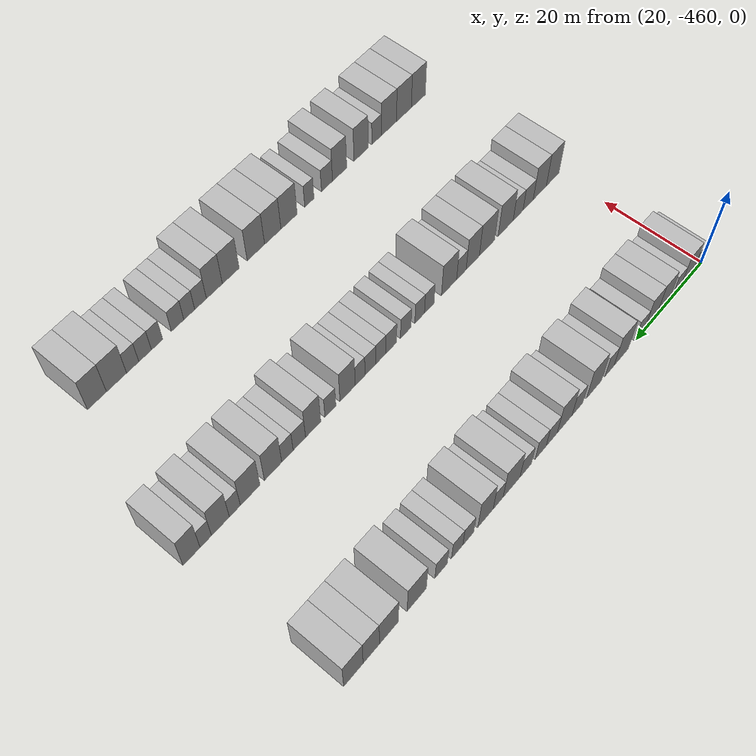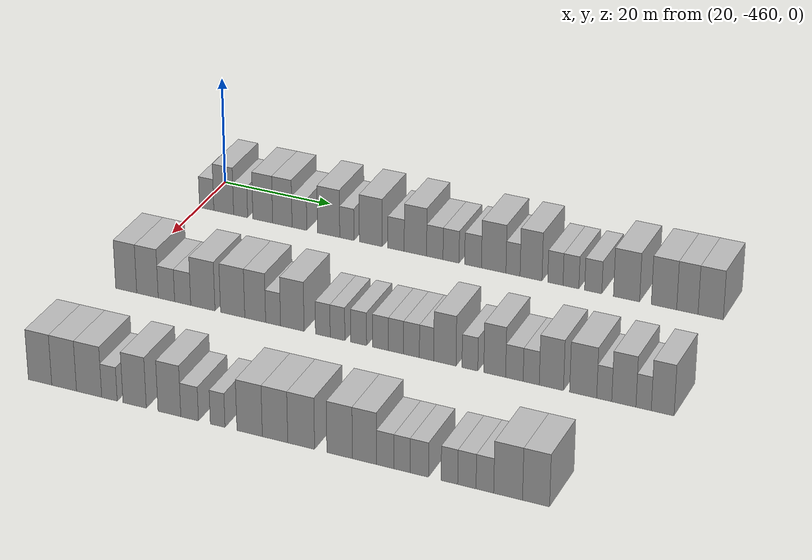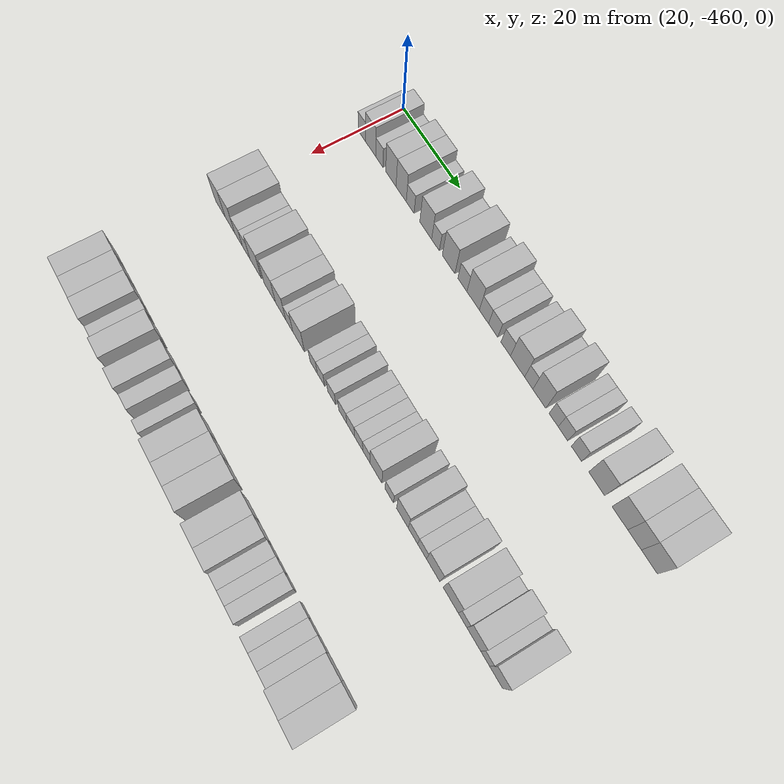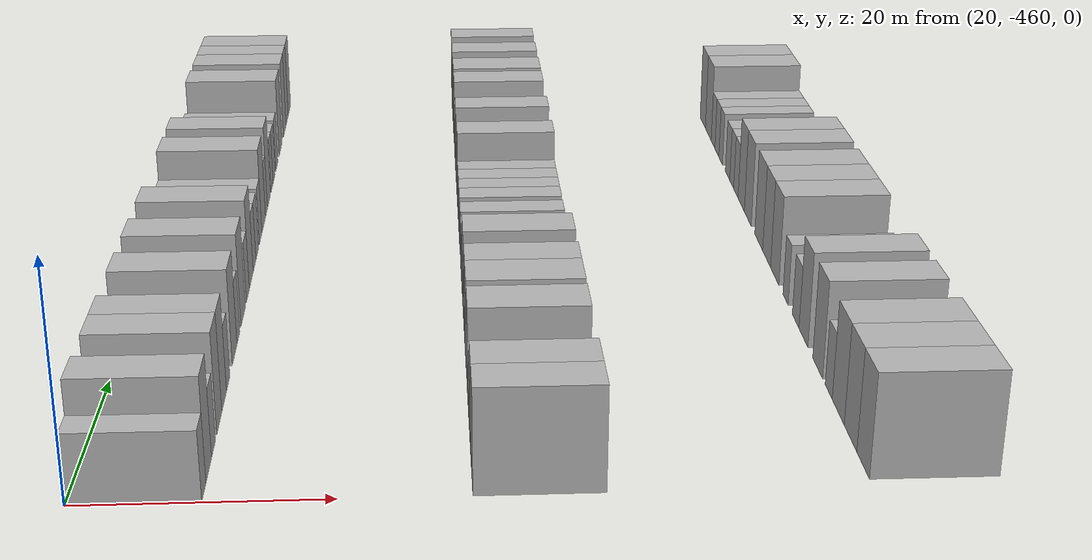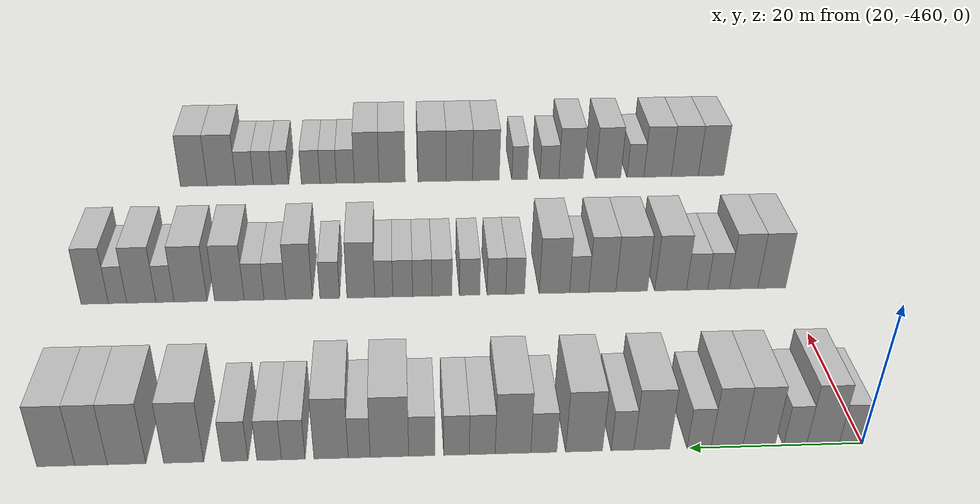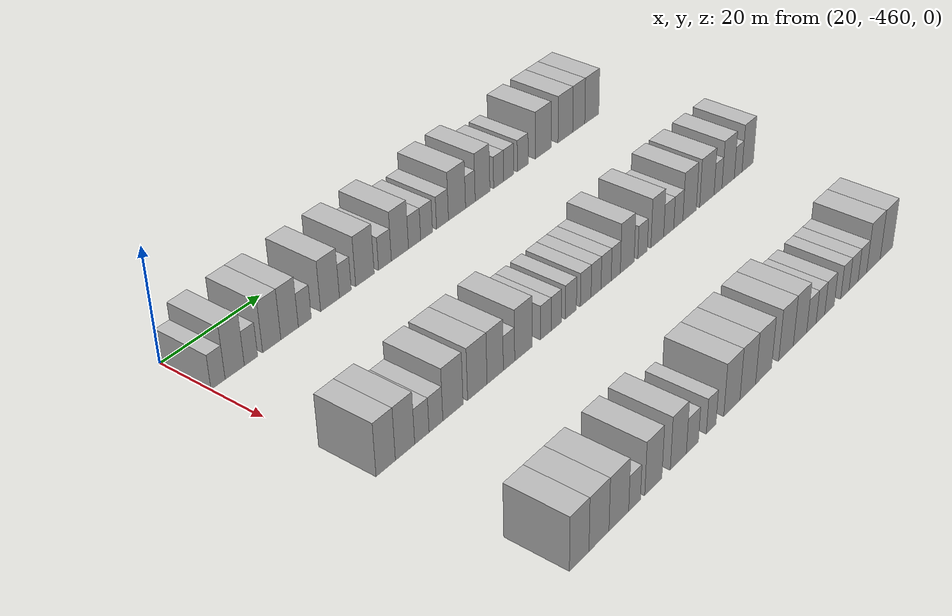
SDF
<sdf version="1.6">
 <world name="default">
  <model name="building_1">
   <static>1</static>
   <pose>25.0000 -458.6283 0 0.000000 0.000000 0.000000</pose>
   <link name="link">
    <pose>0 0 3.00 0 0 0</pose>
    <collision name="collision"><geometry><box><size>10.0000 2.7434 6.0000</size></box></geometry></collision>
    <visual name="visual">
     <cast_shadows>0</cast_shadows>
     <geometry><box><size>10.0000 2.7434 6.0000</size></box></geometry>
     <material>
      <script>
       <uri>model://HANNAS_wall/materials/scripts</uri>
       <uri>model://HANNAS_wall/materials/textures</uri>
       <name>vrc/HANNAS_wall</name>
      </script>
     </material>
    </visual>
   </link>
  </model>
  <model name="building_2">
   <static>1</static>
   <pose>25.0000 -455.3693 0 0.000000 0.000000 0.000000</pose>
   <link name="link">
    <pose>0 0 4.50 0 0 0</pose>
    <collision name="collision"><geometry><box><size>10.0000 3.7745 9.0000</size></box></geometry></collision>
    <visual name="visual">
     <cast_shadows>0</cast_shadows>
     <geometry><box><size>10.0000 3.7745 9.0000</size></box></geometry>
     <material>
      <script>
       <uri>model://HANNAS_wall/materials/scripts</uri>
       <uri>model://HANNAS_wall/materials/textures</uri>
       <name>vrc/HANNAS_wall</name>
      </script>
     </material>
    </visual>
   </link>
  </model>
  <model name="building_3">
   <static>1</static>
   <pose>25.0000 -452.1495 0 0.000000 0.000000 0.000000</pose>
   <link name="link">
    <pose>0 0 3.00 0 0 0</pose>
    <collision name="collision"><geometry><box><size>10.0000 2.6650 6.0000</size></box></geometry></collision>
    <visual name="visual">
     <cast_shadows>0</cast_shadows>
     <geometry><box><size>10.0000 2.6650 6.0000</size></box></geometry>
     <material>
      <script>
       <uri>model://HANNAS_wall/materials/scripts</uri>
       <uri>model://HANNAS_wall/materials/textures</uri>
       <name>vrc/HANNAS_wall</name>
      </script>
     </material>
    </visual>
   </link>
  </model>
  <model name="building_4">
   <static>1</static>
   <pose>25.0000 -447.9494 0 0.000000 0.000000 0.000000</pose>
   <link name="link">
    <pose>0 0 4.50 0 0 0</pose>
    <collision name="collision"><geometry><box><size>10.0000 3.7353 9.0000</size></box></geometry></collision>
    <visual name="visual">
     <cast_shadows>0</cast_shadows>
     <geometry><box><size>10.0000 3.7353 9.0000</size></box></geometry>
     <material>
      <script>
       <uri>model://HANNAS_wall/materials/scripts</uri>
       <uri>model://HANNAS_wall/materials/textures</uri>
       <name>vrc/HANNAS_wall</name>
      </script>
     </material>
    </visual>
   </link>
  </model>
  <model name="building_5">
   <static>1</static>
   <pose>25.0000 -444.2583 0 0.000000 0.000000 0.000000</pose>
   <link name="link">
    <pose>0 0 4.50 0 0 0</pose>
    <collision name="collision"><geometry><box><size>10.0000 3.6470 9.0000</size></box></geometry></collision>
    <visual name="visual">
     <cast_shadows>0</cast_shadows>
     <geometry><box><size>10.0000 3.6470 9.0000</size></box></geometry>
     <material>
      <script>
       <uri>model://HANNAS_wall/materials/scripts</uri>
       <uri>model://HANNAS_wall/materials/textures</uri>
       <name>vrc/HANNAS_wall</name>
      </script>
     </material>
    </visual>
   </link>
  </model>
  <model name="building_6">
   <static>1</static>
   <pose>25.0000 -441.0550 0 0.000000 0.000000 0.000000</pose>
   <link name="link">
    <pose>0 0 3.00 0 0 0</pose>
    <collision name="collision"><geometry><box><size>10.0000 2.7596 6.0000</size></box></geometry></collision>
    <visual name="visual">
     <cast_shadows>0</cast_shadows>
     <geometry><box><size>10.0000 2.7596 6.0000</size></box></geometry>
     <material>
      <script>
       <uri>model://HANNAS_wall/materials/scripts</uri>
       <uri>model://HANNAS_wall/materials/textures</uri>
       <name>vrc/HANNAS_wall</name>
      </script>
     </material>
    </visual>
   </link>
  </model>
  <model name="building_7">
   <static>1</static>
   <pose>25.0000 -435.6190 0 0.000000 0.000000 0.000000</pose>
   <link name="link">
    <pose>0 0 4.50 0 0 0</pose>
    <collision name="collision"><geometry><box><size>10.0000 4.1124 9.0000</size></box></geometry></collision>
    <visual name="visual">
     <cast_shadows>0</cast_shadows>
     <geometry><box><size>10.0000 4.1124 9.0000</size></box></geometry>
     <material>
      <script>
       <uri>model://HANNAS_wall/materials/scripts</uri>
       <uri>model://HANNAS_wall/materials/textures</uri>
       <name>vrc/HANNAS_wall</name>
      </script>
     </material>
    </visual>
   </link>
  </model>
  <model name="building_8">
   <static>1</static>
   <pose>25.0000 -432.2539 0 0.000000 0.000000 0.000000</pose>
   <link name="link">
    <pose>0 0 3.00 0 0 0</pose>
    <collision name="collision"><geometry><box><size>10.0000 2.6179 6.0000</size></box></geometry></collision>
    <visual name="visual">
     <cast_shadows>0</cast_shadows>
     <geometry><box><size>10.0000 2.6179 6.0000</size></box></geometry>
     <material>
      <script>
       <uri>model://HANNAS_wall/materials/scripts</uri>
       <uri>model://HANNAS_wall/materials/textures</uri>
       <name>vrc/HANNAS_wall</name>
      </script>
     </material>
    </visual>
   </link>
  </model>
  <model name="building_9">
   <static>1</static>
   <pose>25.0000 -427.8353 0 0.000000 0.000000 0.000000</pose>
   <link name="link">
    <pose>0 0 4.50 0 0 0</pose>
    <collision name="collision"><geometry><box><size>10.0000 4.2192 9.0000</size></box></geometry></collision>
    <visual name="visual">
     <cast_shadows>0</cast_shadows>
     <geometry><box><size>10.0000 4.2192 9.0000</size></box></geometry>
     <material>
      <script>
       <uri>model://HANNAS_wall/materials/scripts</uri>
       <uri>model://HANNAS_wall/materials/textures</uri>
       <name>vrc/HANNAS_wall</name>
      </script>
     </material>
    </visual>
   </link>
  </model>
  <model name="building_10">
   <static>1</static>
   <pose>25.0000 -423.2299 0 0.000000 0.000000 0.000000</pose>
   <link name="link">
    <pose>0 0 3.00 0 0 0</pose>
    <collision name="collision"><geometry><box><size>10.0000 2.9917 6.0000</size></box></geometry></collision>
    <visual name="visual">
     <cast_shadows>0</cast_shadows>
     <geometry><box><size>10.0000 2.9917 6.0000</size></box></geometry>
     <material>
      <script>
       <uri>model://HANNAS_wall/materials/scripts</uri>
       <uri>model://HANNAS_wall/materials/textures</uri>
       <name>vrc/HANNAS_wall</name>
      </script>
     </material>
    </visual>
   </link>
  </model>
  <model name="building_11">
   <static>1</static>
   <pose>25.0000 -419.7063 0 0.000000 0.000000 0.000000</pose>
   <link name="link">
    <pose>0 0 4.50 0 0 0</pose>
    <collision name="collision"><geometry><box><size>10.0000 4.0556 9.0000</size></box></geometry></collision>
    <visual name="visual">
     <cast_shadows>0</cast_shadows>
     <geometry><box><size>10.0000 4.0556 9.0000</size></box></geometry>
     <material>
      <script>
       <uri>model://HANNAS_wall/materials/scripts</uri>
       <uri>model://HANNAS_wall/materials/textures</uri>
       <name>vrc/HANNAS_wall</name>
      </script>
     </material>
    </visual>
   </link>
  </model>
  <model name="building_12">
   <static>1</static>
   <pose>25.0000 -416.2022 0 0.000000 0.000000 0.000000</pose>
   <link name="link">
    <pose>0 0 3.00 0 0 0</pose>
    <collision name="collision"><geometry><box><size>10.0000 2.9526 6.0000</size></box></geometry></collision>
    <visual name="visual">
     <cast_shadows>0</cast_shadows>
     <geometry><box><size>10.0000 2.9526 6.0000</size></box></geometry>
     <material>
      <script>
       <uri>model://HANNAS_wall/materials/scripts</uri>
       <uri>model://HANNAS_wall/materials/textures</uri>
       <name>vrc/HANNAS_wall</name>
      </script>
     </material>
    </visual>
   </link>
  </model>
  <model name="building_13">
   <static>1</static>
   <pose>25.0000 -413.2810 0 0.000000 0.000000 0.000000</pose>
   <link name="link">
    <pose>0 0 3.00 0 0 0</pose>
    <collision name="collision"><geometry><box><size>10.0000 2.8898 6.0000</size></box></geometry></collision>
    <visual name="visual">
     <cast_shadows>0</cast_shadows>
     <geometry><box><size>10.0000 2.8898 6.0000</size></box></geometry>
     <material>
      <script>
       <uri>model://HANNAS_wall/materials/scripts</uri>
       <uri>model://HANNAS_wall/materials/textures</uri>
       <name>vrc/HANNAS_wall</name>
      </script>
     </material>
    </visual>
   </link>
  </model>
  <model name="building_14">
   <static>1</static>
   <pose>25.0000 -409.3440 0 0.000000 0.000000 0.000000</pose>
   <link name="link">
    <pose>0 0 3.00 0 0 0</pose>
    <collision name="collision"><geometry><box><size>10.0000 2.9842 6.0000</size></box></geometry></collision>
    <visual name="visual">
     <cast_shadows>0</cast_shadows>
     <geometry><box><size>10.0000 2.9842 6.0000</size></box></geometry>
     <material>
      <script>
       <uri>model://HANNAS_wall/materials/scripts</uri>
       <uri>model://HANNAS_wall/materials/textures</uri>
       <name>vrc/HANNAS_wall</name>
      </script>
     </material>
    </visual>
   </link>
  </model>
  <model name="building_15">
   <static>1</static>
   <pose>25.0000 -405.6760 0 0.000000 0.000000 0.000000</pose>
   <link name="link">
    <pose>0 0 4.50 0 0 0</pose>
    <collision name="collision"><geometry><box><size>10.0000 4.3517 9.0000</size></box></geometry></collision>
    <visual name="visual">
     <cast_shadows>0</cast_shadows>
     <geometry><box><size>10.0000 4.3517 9.0000</size></box></geometry>
     <material>
      <script>
       <uri>model://HANNAS_wall/materials/scripts</uri>
       <uri>model://HANNAS_wall/materials/textures</uri>
       <name>vrc/HANNAS_wall</name>
      </script>
     </material>
    </visual>
   </link>
  </model>
  <model name="building_16">
   <static>1</static>
   <pose>25.0000 -402.2556 0 0.000000 0.000000 0.000000</pose>
   <link name="link">
    <pose>0 0 3.00 0 0 0</pose>
    <collision name="collision"><geometry><box><size>10.0000 2.4892 6.0000</size></box></geometry></collision>
    <visual name="visual">
     <cast_shadows>0</cast_shadows>
     <geometry><box><size>10.0000 2.4892 6.0000</size></box></geometry>
     <material>
      <script>
       <uri>model://HANNAS_wall/materials/scripts</uri>
       <uri>model://HANNAS_wall/materials/textures</uri>
       <name>vrc/HANNAS_wall</name>
      </script>
     </material>
    </visual>
   </link>
  </model>
  <model name="building_17">
   <static>1</static>
   <pose>25.0000 -399.0806 0 0.000000 0.000000 0.000000</pose>
   <link name="link">
    <pose>0 0 4.50 0 0 0</pose>
    <collision name="collision"><geometry><box><size>10.0000 3.8608 9.0000</size></box></geometry></collision>
    <visual name="visual">
     <cast_shadows>0</cast_shadows>
     <geometry><box><size>10.0000 3.8608 9.0000</size></box></geometry>
     <material>
      <script>
       <uri>model://HANNAS_wall/materials/scripts</uri>
       <uri>model://HANNAS_wall/materials/textures</uri>
       <name>vrc/HANNAS_wall</name>
      </script>
     </material>
    </visual>
   </link>
  </model>
  <model name="building_18">
   <static>1</static>
   <pose>25.0000 -394.8161 0 0.000000 0.000000 0.000000</pose>
   <link name="link">
    <pose>0 0 3.00 0 0 0</pose>
    <collision name="collision"><geometry><box><size>10.0000 2.6683 6.0000</size></box></geometry></collision>
    <visual name="visual">
     <cast_shadows>0</cast_shadows>
     <geometry><box><size>10.0000 2.6683 6.0000</size></box></geometry>
     <material>
      <script>
       <uri>model://HANNAS_wall/materials/scripts</uri>
       <uri>model://HANNAS_wall/materials/textures</uri>
       <name>vrc/HANNAS_wall</name>
      </script>
     </material>
    </visual>
   </link>
  </model>
  <model name="building_19">
   <static>1</static>
   <pose>25.0000 -392.1013 0 0.000000 0.000000 0.000000</pose>
   <link name="link">
    <pose>0 0 3.00 0 0 0</pose>
    <collision name="collision"><geometry><box><size>10.0000 2.7613 6.0000</size></box></geometry></collision>
    <visual name="visual">
     <cast_shadows>0</cast_shadows>
     <geometry><box><size>10.0000 2.7613 6.0000</size></box></geometry>
     <material>
      <script>
       <uri>model://HANNAS_wall/materials/scripts</uri>
       <uri>model://HANNAS_wall/materials/textures</uri>
       <name>vrc/HANNAS_wall</name>
      </script>
     </material>
    </visual>
   </link>
  </model>
  <model name="building_20">
   <static>1</static>
   <pose>25.0000 -388.2352 0 0.000000 0.000000 0.000000</pose>
   <link name="link">
    <pose>0 0 3.00 0 0 0</pose>
    <collision name="collision"><geometry><box><size>10.0000 2.9707 6.0000</size></box></geometry></collision>
    <visual name="visual">
     <cast_shadows>0</cast_shadows>
     <geometry><box><size>10.0000 2.9707 6.0000</size></box></geometry>
     <material>
      <script>
       <uri>model://HANNAS_wall/materials/scripts</uri>
       <uri>model://HANNAS_wall/materials/textures</uri>
       <name>vrc/HANNAS_wall</name>
      </script>
     </material>
    </visual>
   </link>
  </model>
  <model name="building_21">
   <static>1</static>
   <pose>25.0000 -382.5106 0 0.000000 0.000000 0.000000</pose>
   <link name="link">
    <pose>0 0 4.50 0 0 0</pose>
    <collision name="collision"><geometry><box><size>10.0000 4.4785 9.0000</size></box></geometry></collision>
    <visual name="visual">
     <cast_shadows>0</cast_shadows>
     <geometry><box><size>10.0000 4.4785 9.0000</size></box></geometry>
     <material>
      <script>
       <uri>model://HANNAS_wall/materials/scripts</uri>
       <uri>model://HANNAS_wall/materials/textures</uri>
       <name>vrc/HANNAS_wall</name>
      </script>
     </material>
    </visual>
   </link>
  </model>
  <model name="building_22">
   <static>1</static>
   <pose>25.0000 -376.1218 0 0.000000 0.000000 0.000000</pose>
   <link name="link">
    <pose>0 0 4.50 0 0 0</pose>
    <collision name="collision"><geometry><box><size>10.0000 4.2990 9.0000</size></box></geometry></collision>
    <visual name="visual">
     <cast_shadows>0</cast_shadows>
     <geometry><box><size>10.0000 4.2990 9.0000</size></box></geometry>
     <material>
      <script>
       <uri>model://HANNAS_wall/materials/scripts</uri>
       <uri>model://HANNAS_wall/materials/textures</uri>
       <name>vrc/HANNAS_wall</name>
      </script>
     </material>
    </visual>
   </link>
  </model>
  <model name="building_23">
   <static>1</static>
   <pose>25.0000 -372.1706 0 0.000000 0.000000 0.000000</pose>
   <link name="link">
    <pose>0 0 4.50 0 0 0</pose>
    <collision name="collision"><geometry><box><size>10.0000 3.6033 9.0000</size></box></geometry></collision>
    <visual name="visual">
     <cast_shadows>0</cast_shadows>
     <geometry><box><size>10.0000 3.6033 9.0000</size></box></geometry>
     <material>
      <script>
       <uri>model://HANNAS_wall/materials/scripts</uri>
       <uri>model://HANNAS_wall/materials/textures</uri>
       <name>vrc/HANNAS_wall</name>
      </script>
     </material>
    </visual>
   </link>
  </model>
  <model name="building_24">
   <static>1</static>
   <pose>25.0000 -368.2538 0 0.000000 0.000000 0.000000</pose>
   <link name="link">
    <pose>0 0 4.50 0 0 0</pose>
    <collision name="collision"><geometry><box><size>10.0000 4.2304 9.0000</size></box></geometry></collision>
    <visual name="visual">
     <cast_shadows>0</cast_shadows>
     <geometry><box><size>10.0000 4.2304 9.0000</size></box></geometry>
     <material>
      <script>
       <uri>model://HANNAS_wall/materials/scripts</uri>
       <uri>model://HANNAS_wall/materials/textures</uri>
       <name>vrc/HANNAS_wall</name>
      </script>
     </material>
    </visual>
   </link>
  </model>
  <model name="building_224">
   <static>1</static>
   <pose>55.0000 -458.0700 0 0.000000 0.000000 0.000000</pose>
   <link name="link">
    <pose>0 0 4.50 0 0 0</pose>
    <collision name="collision"><geometry><box><size>10.0000 3.8600 9.0000</size></box></geometry></collision>
    <visual name="visual">
     <cast_shadows>0</cast_shadows>
     <geometry><box><size>10.0000 3.8600 9.0000</size></box></geometry>
     <material>
      <script>
       <uri>model://HANNAS_wall/materials/scripts</uri>
       <uri>model://HANNAS_wall/materials/textures</uri>
       <name>vrc/HANNAS_wall</name>
      </script>
     </material>
    </visual>
   </link>
  </model>
  <model name="building_225">
   <static>1</static>
   <pose>55.0000 -454.1727 0 0.000000 0.000000 0.000000</pose>
   <link name="link">
    <pose>0 0 4.50 0 0 0</pose>
    <collision name="collision"><geometry><box><size>10.0000 3.9346 9.0000</size></box></geometry></collision>
    <visual name="visual">
     <cast_shadows>0</cast_shadows>
     <geometry><box><size>10.0000 3.9346 9.0000</size></box></geometry>
     <material>
      <script>
       <uri>model://HANNAS_wall/materials/scripts</uri>
       <uri>model://HANNAS_wall/materials/textures</uri>
       <name>vrc/HANNAS_wall</name>
      </script>
     </material>
    </visual>
   </link>
  </model>
  <model name="building_226">
   <static>1</static>
   <pose>55.0000 -450.7074 0 0.000000 0.000000 0.000000</pose>
   <link name="link">
    <pose>0 0 3.00 0 0 0</pose>
    <collision name="collision"><geometry><box><size>10.0000 2.9962 6.0000</size></box></geometry></collision>
    <visual name="visual">
     <cast_shadows>0</cast_shadows>
     <geometry><box><size>10.0000 2.9962 6.0000</size></box></geometry>
     <material>
      <script>
       <uri>model://HANNAS_wall/materials/scripts</uri>
       <uri>model://HANNAS_wall/materials/textures</uri>
       <name>vrc/HANNAS_wall</name>
      </script>
     </material>
    </visual>
   </link>
  </model>
  <model name="building_227">
   <static>1</static>
   <pose>55.0000 -447.7494 0 0.000000 0.000000 0.000000</pose>
   <link name="link">
    <pose>0 0 3.00 0 0 0</pose>
    <collision name="collision"><geometry><box><size>10.0000 2.9198 6.0000</size></box></geometry></collision>
    <visual name="visual">
     <cast_shadows>0</cast_shadows>
     <geometry><box><size>10.0000 2.9198 6.0000</size></box></geometry>
     <material>
      <script>
       <uri>model://HANNAS_wall/materials/scripts</uri>
       <uri>model://HANNAS_wall/materials/textures</uri>
       <name>vrc/HANNAS_wall</name>
      </script>
     </material>
    </visual>
   </link>
  </model>
  <model name="building_228">
   <static>1</static>
   <pose>55.0000 -444.1027 0 0.000000 0.000000 0.000000</pose>
   <link name="link">
    <pose>0 0 4.50 0 0 0</pose>
    <collision name="collision"><geometry><box><size>10.0000 4.3736 9.0000</size></box></geometry></collision>
    <visual name="visual">
     <cast_shadows>0</cast_shadows>
     <geometry><box><size>10.0000 4.3736 9.0000</size></box></geometry>
     <material>
      <script>
       <uri>model://HANNAS_wall/materials/scripts</uri>
       <uri>model://HANNAS_wall/materials/textures</uri>
       <name>vrc/HANNAS_wall</name>
      </script>
     </material>
    </visual>
   </link>
  </model>
  <model name="building_229">
   <static>1</static>
   <pose>55.0000 -438.7463 0 0.000000 0.000000 0.000000</pose>
   <link name="link">
    <pose>0 0 4.50 0 0 0</pose>
    <collision name="collision"><geometry><box><size>10.0000 4.3390 9.0000</size></box></geometry></collision>
    <visual name="visual">
     <cast_shadows>0</cast_shadows>
     <geometry><box><size>10.0000 4.3390 9.0000</size></box></geometry>
     <material>
      <script>
       <uri>model://HANNAS_wall/materials/scripts</uri>
       <uri>model://HANNAS_wall/materials/textures</uri>
       <name>vrc/HANNAS_wall</name>
      </script>
     </material>
    </visual>
   </link>
  </model>
  <model name="building_230">
   <static>1</static>
   <pose>55.0000 -434.7219 0 0.000000 0.000000 0.000000</pose>
   <link name="link">
    <pose>0 0 4.50 0 0 0</pose>
    <collision name="collision"><geometry><box><size>10.0000 3.7099 9.0000</size></box></geometry></collision>
    <visual name="visual">
     <cast_shadows>0</cast_shadows>
     <geometry><box><size>10.0000 3.7099 9.0000</size></box></geometry>
     <material>
      <script>
       <uri>model://HANNAS_wall/materials/scripts</uri>
       <uri>model://HANNAS_wall/materials/textures</uri>
       <name>vrc/HANNAS_wall</name>
      </script>
     </material>
    </visual>
   </link>
  </model>
  <model name="building_231">
   <static>1</static>
   <pose>55.0000 -431.5479 0 0.000000 0.000000 0.000000</pose>
   <link name="link">
    <pose>0 0 3.00 0 0 0</pose>
    <collision name="collision"><geometry><box><size>10.0000 2.6380 6.0000</size></box></geometry></collision>
    <visual name="visual">
     <cast_shadows>0</cast_shadows>
     <geometry><box><size>10.0000 2.6380 6.0000</size></box></geometry>
     <material>
      <script>
       <uri>model://HANNAS_wall/materials/scripts</uri>
       <uri>model://HANNAS_wall/materials/textures</uri>
       <name>vrc/HANNAS_wall</name>
      </script>
     </material>
    </visual>
   </link>
  </model>
  <model name="building_232">
   <static>1</static>
   <pose>55.0000 -428.1583 0 0.000000 0.000000 0.000000</pose>
   <link name="link">
    <pose>0 0 4.50 0 0 0</pose>
    <collision name="collision"><geometry><box><size>10.0000 4.1413 9.0000</size></box></geometry></collision>
    <visual name="visual">
     <cast_shadows>0</cast_shadows>
     <geometry><box><size>10.0000 4.1413 9.0000</size></box></geometry>
     <material>
      <script>
       <uri>model://HANNAS_wall/materials/scripts</uri>
       <uri>model://HANNAS_wall/materials/textures</uri>
       <name>vrc/HANNAS_wall</name>
      </script>
     </material>
    </visual>
   </link>
  </model>
  <model name="building_233">
   <static>1</static>
   <pose>55.0000 -422.8069 0 0.000000 0.000000 0.000000</pose>
   <link name="link">
    <pose>0 0 3.00 0 0 0</pose>
    <collision name="collision"><geometry><box><size>10.0000 2.5613 6.0000</size></box></geometry></collision>
    <visual name="visual">
     <cast_shadows>0</cast_shadows>
     <geometry><box><size>10.0000 2.5613 6.0000</size></box></geometry>
     <material>
      <script>
       <uri>model://HANNAS_wall/materials/scripts</uri>
       <uri>model://HANNAS_wall/materials/textures</uri>
       <name>vrc/HANNAS_wall</name>
      </script>
     </material>
    </visual>
   </link>
  </model>
  <model name="building_234">
   <static>1</static>
   <pose>55.0000 -420.2516 0 0.000000 0.000000 0.000000</pose>
   <link name="link">
    <pose>0 0 3.00 0 0 0</pose>
    <collision name="collision"><geometry><box><size>10.0000 2.5493 6.0000</size></box></geometry></collision>
    <visual name="visual">
     <cast_shadows>0</cast_shadows>
     <geometry><box><size>10.0000 2.5493 6.0000</size></box></geometry>
     <material>
      <script>
       <uri>model://HANNAS_wall/materials/scripts</uri>
       <uri>model://HANNAS_wall/materials/textures</uri>
       <name>vrc/HANNAS_wall</name>
      </script>
     </material>
    </visual>
   </link>
  </model>
  <model name="building_235">
   <static>1</static>
   <pose>55.0000 -416.5926 0 0.000000 0.000000 0.000000</pose>
   <link name="link">
    <pose>0 0 3.00 0 0 0</pose>
    <collision name="collision"><geometry><box><size>10.0000 2.7689 6.0000</size></box></geometry></collision>
    <visual name="visual">
     <cast_shadows>0</cast_shadows>
     <geometry><box><size>10.0000 2.7689 6.0000</size></box></geometry>
     <material>
      <script>
       <uri>model://HANNAS_wall/materials/scripts</uri>
       <uri>model://HANNAS_wall/materials/textures</uri>
       <name>vrc/HANNAS_wall</name>
      </script>
     </material>
    </visual>
   </link>
  </model>
  <model name="building_236">
   <static>1</static>
   <pose>55.0000 -412.8328 0 0.000000 0.000000 0.000000</pose>
   <link name="link">
    <pose>0 0 3.00 0 0 0</pose>
    <collision name="collision"><geometry><box><size>10.0000 2.7507 6.0000</size></box></geometry></collision>
    <visual name="visual">
     <cast_shadows>0</cast_shadows>
     <geometry><box><size>10.0000 2.7507 6.0000</size></box></geometry>
     <material>
      <script>
       <uri>model://HANNAS_wall/materials/scripts</uri>
       <uri>model://HANNAS_wall/materials/textures</uri>
       <name>vrc/HANNAS_wall</name>
      </script>
     </material>
    </visual>
   </link>
  </model>
  <model name="building_237">
   <static>1</static>
   <pose>55.0000 -410.1594 0 0.000000 0.000000 0.000000</pose>
   <link name="link">
    <pose>0 0 3.00 0 0 0</pose>
    <collision name="collision"><geometry><box><size>10.0000 2.5962 6.0000</size></box></geometry></collision>
    <visual name="visual">
     <cast_shadows>0</cast_shadows>
     <geometry><box><size>10.0000 2.5962 6.0000</size></box></geometry>
     <material>
      <script>
       <uri>model://HANNAS_wall/materials/scripts</uri>
       <uri>model://HANNAS_wall/materials/textures</uri>
       <name>vrc/HANNAS_wall</name>
      </script>
     </material>
    </visual>
   </link>
  </model>
  <model name="building_238">
   <static>1</static>
   <pose>55.0000 -407.5185 0 0.000000 0.000000 0.000000</pose>
   <link name="link">
    <pose>0 0 3.00 0 0 0</pose>
    <collision name="collision"><geometry><box><size>10.0000 2.6857 6.0000</size></box></geometry></collision>
    <visual name="visual">
     <cast_shadows>0</cast_shadows>
     <geometry><box><size>10.0000 2.6857 6.0000</size></box></geometry>
     <material>
      <script>
       <uri>model://HANNAS_wall/materials/scripts</uri>
       <uri>model://HANNAS_wall/materials/textures</uri>
       <name>vrc/HANNAS_wall</name>
      </script>
     </material>
    </visual>
   </link>
  </model>
  <model name="building_239">
   <static>1</static>
   <pose>55.0000 -404.9559 0 0.000000 0.000000 0.000000</pose>
   <link name="link">
    <pose>0 0 3.00 0 0 0</pose>
    <collision name="collision"><geometry><box><size>10.0000 2.4395 6.0000</size></box></geometry></collision>
    <visual name="visual">
     <cast_shadows>0</cast_shadows>
     <geometry><box><size>10.0000 2.4395 6.0000</size></box></geometry>
     <material>
      <script>
       <uri>model://HANNAS_wall/materials/scripts</uri>
       <uri>model://HANNAS_wall/materials/textures</uri>
       <name>vrc/HANNAS_wall</name>
      </script>
     </material>
    </visual>
   </link>
  </model>
  <model name="building_240">
   <static>1</static>
   <pose>55.0000 -401.8536 0 0.000000 0.000000 0.000000</pose>
   <link name="link">
    <pose>0 0 4.50 0 0 0</pose>
    <collision name="collision"><geometry><box><size>10.0000 3.7651 9.0000</size></box></geometry></collision>
    <visual name="visual">
     <cast_shadows>0</cast_shadows>
     <geometry><box><size>10.0000 3.7651 9.0000</size></box></geometry>
     <material>
      <script>
       <uri>model://HANNAS_wall/materials/scripts</uri>
       <uri>model://HANNAS_wall/materials/textures</uri>
       <name>vrc/HANNAS_wall</name>
      </script>
     </material>
    </visual>
   </link>
  </model>
  <model name="building_241">
   <static>1</static>
   <pose>55.0000 -397.6453 0 0.000000 0.000000 0.000000</pose>
   <link name="link">
    <pose>0 0 3.00 0 0 0</pose>
    <collision name="collision"><geometry><box><size>10.0000 2.6514 6.0000</size></box></geometry></collision>
    <visual name="visual">
     <cast_shadows>0</cast_shadows>
     <geometry><box><size>10.0000 2.6514 6.0000</size></box></geometry>
     <material>
      <script>
       <uri>model://HANNAS_wall/materials/scripts</uri>
       <uri>model://HANNAS_wall/materials/textures</uri>
       <name>vrc/HANNAS_wall</name>
      </script>
     </material>
    </visual>
   </link>
  </model>
  <model name="building_242">
   <static>1</static>
   <pose>55.0000 -393.5048 0 0.000000 0.000000 0.000000</pose>
   <link name="link">
    <pose>0 0 4.50 0 0 0</pose>
    <collision name="collision"><geometry><box><size>10.0000 3.6295 9.0000</size></box></geometry></collision>
    <visual name="visual">
     <cast_shadows>0</cast_shadows>
     <geometry><box><size>10.0000 3.6295 9.0000</size></box></geometry>
     <material>
      <script>
       <uri>model://HANNAS_wall/materials/scripts</uri>
       <uri>model://HANNAS_wall/materials/textures</uri>
       <name>vrc/HANNAS_wall</name>
      </script>
     </material>
    </visual>
   </link>
  </model>
  <model name="building_243">
   <static>1</static>
   <pose>55.0000 -390.2352 0 0.000000 0.000000 0.000000</pose>
   <link name="link">
    <pose>0 0 3.00 0 0 0</pose>
    <collision name="collision"><geometry><box><size>10.0000 2.9099 6.0000</size></box></geometry></collision>
    <visual name="visual">
     <cast_shadows>0</cast_shadows>
     <geometry><box><size>10.0000 2.9099 6.0000</size></box></geometry>
     <material>
      <script>
       <uri>model://HANNAS_wall/materials/scripts</uri>
       <uri>model://HANNAS_wall/materials/textures</uri>
       <name>vrc/HANNAS_wall</name>
      </script>
     </material>
    </visual>
   </link>
  </model>
  <model name="building_244">
   <static>1</static>
   <pose>55.0000 -387.4516 0 0.000000 0.000000 0.000000</pose>
   <link name="link">
    <pose>0 0 3.00 0 0 0</pose>
    <collision name="collision"><geometry><box><size>10.0000 2.6573 6.0000</size></box></geometry></collision>
    <visual name="visual">
     <cast_shadows>0</cast_shadows>
     <geometry><box><size>10.0000 2.6573 6.0000</size></box></geometry>
     <material>
      <script>
       <uri>model://HANNAS_wall/materials/scripts</uri>
       <uri>model://HANNAS_wall/materials/textures</uri>
       <name>vrc/HANNAS_wall</name>
      </script>
     </material>
    </visual>
   </link>
  </model>
  <model name="building_245">
   <static>1</static>
   <pose>55.0000 -384.1329 0 0.000000 0.000000 0.000000</pose>
   <link name="link">
    <pose>0 0 4.50 0 0 0</pose>
    <collision name="collision"><geometry><box><size>10.0000 3.9801 9.0000</size></box></geometry></collision>
    <visual name="visual">
     <cast_shadows>0</cast_shadows>
     <geometry><box><size>10.0000 3.9801 9.0000</size></box></geometry>
     <material>
      <script>
       <uri>model://HANNAS_wall/materials/scripts</uri>
       <uri>model://HANNAS_wall/materials/textures</uri>
       <name>vrc/HANNAS_wall</name>
      </script>
     </material>
    </visual>
   </link>
  </model>
  <model name="building_246">
   <static>1</static>
   <pose>55.0000 -378.9392 0 0.000000 0.000000 0.000000</pose>
   <link name="link">
    <pose>0 0 4.50 0 0 0</pose>
    <collision name="collision"><geometry><box><size>10.0000 4.4073 9.0000</size></box></geometry></collision>
    <visual name="visual">
     <cast_shadows>0</cast_shadows>
     <geometry><box><size>10.0000 4.4073 9.0000</size></box></geometry>
     <material>
      <script>
       <uri>model://HANNAS_wall/materials/scripts</uri>
       <uri>model://HANNAS_wall/materials/textures</uri>
       <name>vrc/HANNAS_wall</name>
      </script>
     </material>
    </visual>
   </link>
  </model>
  <model name="building_247">
   <static>1</static>
   <pose>55.0000 -375.5166 0 0.000000 0.000000 0.000000</pose>
   <link name="link">
    <pose>0 0 3.00 0 0 0</pose>
    <collision name="collision"><geometry><box><size>10.0000 2.4381 6.0000</size></box></geometry></collision>
    <visual name="visual">
     <cast_shadows>0</cast_shadows>
     <geometry><box><size>10.0000 2.4381 6.0000</size></box></geometry>
     <material>
      <script>
       <uri>model://HANNAS_wall/materials/scripts</uri>
       <uri>model://HANNAS_wall/materials/textures</uri>
       <name>vrc/HANNAS_wall</name>
      </script>
     </material>
    </visual>
   </link>
  </model>
  <model name="building_248">
   <static>1</static>
   <pose>55.0000 -372.3489 0 0.000000 0.000000 0.000000</pose>
   <link name="link">
    <pose>0 0 4.50 0 0 0</pose>
    <collision name="collision"><geometry><box><size>10.0000 3.8971 9.0000</size></box></geometry></collision>
    <visual name="visual">
     <cast_shadows>0</cast_shadows>
     <geometry><box><size>10.0000 3.8971 9.0000</size></box></geometry>
     <material>
      <script>
       <uri>model://HANNAS_wall/materials/scripts</uri>
       <uri>model://HANNAS_wall/materials/textures</uri>
       <name>vrc/HANNAS_wall</name>
      </script>
     </material>
    </visual>
   </link>
  </model>
  <model name="building_249">
   <static>1</static>
   <pose>55.0000 -369.1740 0 0.000000 0.000000 0.000000</pose>
   <link name="link">
    <pose>0 0 3.00 0 0 0</pose>
    <collision name="collision"><geometry><box><size>10.0000 2.4528 6.0000</size></box></geometry></collision>
    <visual name="visual">
     <cast_shadows>0</cast_shadows>
     <geometry><box><size>10.0000 2.4528 6.0000</size></box></geometry>
     <material>
      <script>
       <uri>model://HANNAS_wall/materials/scripts</uri>
       <uri>model://HANNAS_wall/materials/textures</uri>
       <name>vrc/HANNAS_wall</name>
      </script>
     </material>
    </visual>
   </link>
  </model>
  <model name="building_250">
   <static>1</static>
   <pose>55.0000 -366.1276 0 0.000000 0.000000 0.000000</pose>
   <link name="link">
    <pose>0 0 4.50 0 0 0</pose>
    <collision name="collision"><geometry><box><size>10.0000 3.6400 9.0000</size></box></geometry></collision>
    <visual name="visual">
     <cast_shadows>0</cast_shadows>
     <geometry><box><size>10.0000 3.6400 9.0000</size></box></geometry>
     <material>
      <script>
       <uri>model://HANNAS_wall/materials/scripts</uri>
       <uri>model://HANNAS_wall/materials/textures</uri>
       <name>vrc/HANNAS_wall</name>
      </script>
     </material>
    </visual>
   </link>
  </model>
  <model name="building_451">
   <static>1</static>
   <pose>85.0000 -456.9362 0 0.000000 0.000000 0.000000</pose>
   <link name="link">
    <pose>0 0 4.50 0 0 0</pose>
    <collision name="collision"><geometry><box><size>10.0000 4.1275 9.0000</size></box></geometry></collision>
    <visual name="visual">
     <cast_shadows>0</cast_shadows>
     <geometry><box><size>10.0000 4.1275 9.0000</size></box></geometry>
     <material>
      <script>
       <uri>model://HANNAS_wall/materials/scripts</uri>
       <uri>model://HANNAS_wall/materials/textures</uri>
       <name>vrc/HANNAS_wall</name>
      </script>
     </material>
    </visual>
   </link>
  </model>
  <model name="building_452">
   <static>1</static>
   <pose>85.0000 -452.7031 0 0.000000 0.000000 0.000000</pose>
   <link name="link">
    <pose>0 0 4.50 0 0 0</pose>
    <collision name="collision"><geometry><box><size>10.0000 4.3387 9.0000</size></box></geometry></collision>
    <visual name="visual">
     <cast_shadows>0</cast_shadows>
     <geometry><box><size>10.0000 4.3387 9.0000</size></box></geometry>
     <material>
      <script>
       <uri>model://HANNAS_wall/materials/scripts</uri>
       <uri>model://HANNAS_wall/materials/textures</uri>
       <name>vrc/HANNAS_wall</name>
      </script>
     </material>
    </visual>
   </link>
  </model>
  <model name="building_453">
   <static>1</static>
   <pose>85.0000 -448.3382 0 0.000000 0.000000 0.000000</pose>
   <link name="link">
    <pose>0 0 4.50 0 0 0</pose>
    <collision name="collision"><geometry><box><size>10.0000 4.3913 9.0000</size></box></geometry></collision>
    <visual name="visual">
     <cast_shadows>0</cast_shadows>
     <geometry><box><size>10.0000 4.3913 9.0000</size></box></geometry>
     <material>
      <script>
       <uri>model://HANNAS_wall/materials/scripts</uri>
       <uri>model://HANNAS_wall/materials/textures</uri>
       <name>vrc/HANNAS_wall</name>
      </script>
     </material>
    </visual>
   </link>
  </model>
  <model name="building_454">
   <static>1</static>
   <pose>85.0000 -444.7998 0 0.000000 0.000000 0.000000</pose>
   <link name="link">
    <pose>0 0 3.00 0 0 0</pose>
    <collision name="collision"><geometry><box><size>10.0000 2.6854 6.0000</size></box></geometry></collision>
    <visual name="visual">
     <cast_shadows>0</cast_shadows>
     <geometry><box><size>10.0000 2.6854 6.0000</size></box></geometry>
     <material>
      <script>
       <uri>model://HANNAS_wall/materials/scripts</uri>
       <uri>model://HANNAS_wall/materials/textures</uri>
       <name>vrc/HANNAS_wall</name>
      </script>
     </material>
    </visual>
   </link>
  </model>
  <model name="building_455">
   <static>1</static>
   <pose>85.0000 -440.4530 0 0.000000 0.000000 0.000000</pose>
   <link name="link">
    <pose>0 0 4.50 0 0 0</pose>
    <collision name="collision"><geometry><box><size>10.0000 4.0082 9.0000</size></box></geometry></collision>
    <visual name="visual">
     <cast_shadows>0</cast_shadows>
     <geometry><box><size>10.0000 4.0082 9.0000</size></box></geometry>
     <material>
      <script>
       <uri>model://HANNAS_wall/materials/scripts</uri>
       <uri>model://HANNAS_wall/materials/textures</uri>
       <name>vrc/HANNAS_wall</name>
      </script>
     </material>
    </visual>
   </link>
  </model>
  <model name="building_456">
   <static>1</static>
   <pose>85.0000 -434.5060 0 0.000000 0.000000 0.000000</pose>
   <link name="link">
    <pose>0 0 4.50 0 0 0</pose>
    <collision name="collision"><geometry><box><size>10.0000 3.8859 9.0000</size></box></geometry></collision>
    <visual name="visual">
     <cast_shadows>0</cast_shadows>
     <geometry><box><size>10.0000 3.8859 9.0000</size></box></geometry>
     <material>
      <script>
       <uri>model://HANNAS_wall/materials/scripts</uri>
       <uri>model://HANNAS_wall/materials/textures</uri>
       <name>vrc/HANNAS_wall</name>
      </script>
     </material>
    </visual>
   </link>
  </model>
  <model name="building_457">
   <static>1</static>
   <pose>85.0000 -431.0664 0 0.000000 0.000000 0.000000</pose>
   <link name="link">
    <pose>0 0 3.00 0 0 0</pose>
    <collision name="collision"><geometry><box><size>10.0000 2.9934 6.0000</size></box></geometry></collision>
    <visual name="visual">
     <cast_shadows>0</cast_shadows>
     <geometry><box><size>10.0000 2.9934 6.0000</size></box></geometry>
     <material>
      <script>
       <uri>model://HANNAS_wall/materials/scripts</uri>
       <uri>model://HANNAS_wall/materials/textures</uri>
       <name>vrc/HANNAS_wall</name>
      </script>
     </material>
    </visual>
   </link>
  </model>
  <model name="building_458">
   <static>1</static>
   <pose>85.0000 -426.3385 0 0.000000 0.000000 0.000000</pose>
   <link name="link">
    <pose>0 0 3.00 0 0 0</pose>
    <collision name="collision"><geometry><box><size>10.0000 2.4623 6.0000</size></box></geometry></collision>
    <visual name="visual">
     <cast_shadows>0</cast_shadows>
     <geometry><box><size>10.0000 2.4623 6.0000</size></box></geometry>
     <material>
      <script>
       <uri>model://HANNAS_wall/materials/scripts</uri>
       <uri>model://HANNAS_wall/materials/textures</uri>
       <name>vrc/HANNAS_wall</name>
      </script>
     </material>
    </visual>
   </link>
  </model>
  <model name="building_459">
   <static>1</static>
   <pose>85.0000 -420.9932 0 0.000000 0.000000 0.000000</pose>
   <link name="link">
    <pose>0 0 4.50 0 0 0</pose>
    <collision name="collision"><geometry><box><size>10.0000 4.2284 9.0000</size></box></geometry></collision>
    <visual name="visual">
     <cast_shadows>0</cast_shadows>
     <geometry><box><size>10.0000 4.2284 9.0000</size></box></geometry>
     <material>
      <script>
       <uri>model://HANNAS_wall/materials/scripts</uri>
       <uri>model://HANNAS_wall/materials/textures</uri>
       <name>vrc/HANNAS_wall</name>
      </script>
     </material>
    </visual>
   </link>
  </model>
  <model name="building_460">
   <static>1</static>
   <pose>85.0000 -416.7753 0 0.000000 0.000000 0.000000</pose>
   <link name="link">
    <pose>0 0 4.50 0 0 0</pose>
    <collision name="collision"><geometry><box><size>10.0000 4.2073 9.0000</size></box></geometry></collision>
    <visual name="visual">
     <cast_shadows>0</cast_shadows>
     <geometry><box><size>10.0000 4.2073 9.0000</size></box></geometry>
     <material>
      <script>
       <uri>model://HANNAS_wall/materials/scripts</uri>
       <uri>model://HANNAS_wall/materials/textures</uri>
       <name>vrc/HANNAS_wall</name>
      </script>
     </material>
    </visual>
   </link>
  </model>
  <model name="building_461">
   <static>1</static>
   <pose>85.0000 -412.4688 0 0.000000 0.000000 0.000000</pose>
   <link name="link">
    <pose>0 0 4.50 0 0 0</pose>
    <collision name="collision"><geometry><box><size>10.0000 4.4057 9.0000</size></box></geometry></collision>
    <visual name="visual">
     <cast_shadows>0</cast_shadows>
     <geometry><box><size>10.0000 4.4057 9.0000</size></box></geometry>
     <material>
      <script>
       <uri>model://HANNAS_wall/materials/scripts</uri>
       <uri>model://HANNAS_wall/materials/textures</uri>
       <name>vrc/HANNAS_wall</name>
      </script>
     </material>
    </visual>
   </link>
  </model>
  <model name="building_462">
   <static>1</static>
   <pose>85.0000 -406.1920 0 0.000000 0.000000 0.000000</pose>
   <link name="link">
    <pose>0 0 4.50 0 0 0</pose>
    <collision name="collision"><geometry><box><size>10.0000 4.1480 9.0000</size></box></geometry></collision>
    <visual name="visual">
     <cast_shadows>0</cast_shadows>
     <geometry><box><size>10.0000 4.1480 9.0000</size></box></geometry>
     <material>
      <script>
       <uri>model://HANNAS_wall/materials/scripts</uri>
       <uri>model://HANNAS_wall/materials/textures</uri>
       <name>vrc/HANNAS_wall</name>
      </script>
     </material>
    </visual>
   </link>
  </model>
  <model name="building_463">
   <static>1</static>
   <pose>85.0000 -402.1736 0 0.000000 0.000000 0.000000</pose>
   <link name="link">
    <pose>0 0 4.50 0 0 0</pose>
    <collision name="collision"><geometry><box><size>10.0000 3.8886 9.0000</size></box></geometry></collision>
    <visual name="visual">
     <cast_shadows>0</cast_shadows>
     <geometry><box><size>10.0000 3.8886 9.0000</size></box></geometry>
     <material>
      <script>
       <uri>model://HANNAS_wall/materials/scripts</uri>
       <uri>model://HANNAS_wall/materials/textures</uri>
       <name>vrc/HANNAS_wall</name>
      </script>
     </material>
    </visual>
   </link>
  </model>
  <model name="building_464">
   <static>1</static>
   <pose>85.0000 -398.8236 0 0.000000 0.000000 0.000000</pose>
   <link name="link">
    <pose>0 0 3.00 0 0 0</pose>
    <collision name="collision"><geometry><box><size>10.0000 2.8115 6.0000</size></box></geometry></collision>
    <visual name="visual">
     <cast_shadows>0</cast_shadows>
     <geometry><box><size>10.0000 2.8115 6.0000</size></box></geometry>
     <material>
      <script>
       <uri>model://HANNAS_wall/materials/scripts</uri>
       <uri>model://HANNAS_wall/materials/textures</uri>
       <name>vrc/HANNAS_wall</name>
      </script>
     </material>
    </visual>
   </link>
  </model>
  <model name="building_465">
   <static>1</static>
   <pose>85.0000 -396.1281 0 0.000000 0.000000 0.000000</pose>
   <link name="link">
    <pose>0 0 3.00 0 0 0</pose>
    <collision name="collision"><geometry><box><size>10.0000 2.5794 6.0000</size></box></geometry></collision>
    <visual name="visual">
     <cast_shadows>0</cast_shadows>
     <geometry><box><size>10.0000 2.5794 6.0000</size></box></geometry>
     <material>
      <script>
       <uri>model://HANNAS_wall/materials/scripts</uri>
       <uri>model://HANNAS_wall/materials/textures</uri>
       <name>vrc/HANNAS_wall</name>
      </script>
     </material>
    </visual>
   </link>
  </model>
  <model name="building_466">
   <static>1</static>
   <pose>85.0000 -393.3754 0 0.000000 0.000000 0.000000</pose>
   <link name="link">
    <pose>0 0 3.00 0 0 0</pose>
    <collision name="collision"><geometry><box><size>10.0000 2.9261 6.0000</size></box></geometry></collision>
    <visual name="visual">
     <cast_shadows>0</cast_shadows>
     <geometry><box><size>10.0000 2.9261 6.0000</size></box></geometry>
     <material>
      <script>
       <uri>model://HANNAS_wall/materials/scripts</uri>
       <uri>model://HANNAS_wall/materials/textures</uri>
       <name>vrc/HANNAS_wall</name>
      </script>
     </material>
    </visual>
   </link>
  </model>
  <model name="building_467">
   <static>1</static>
   <pose>85.0000 -388.6073 0 0.000000 0.000000 0.000000</pose>
   <link name="link">
    <pose>0 0 3.00 0 0 0</pose>
    <collision name="collision"><geometry><box><size>10.0000 2.6100 6.0000</size></box></geometry></collision>
    <visual name="visual">
     <cast_shadows>0</cast_shadows>
     <geometry><box><size>10.0000 2.6100 6.0000</size></box></geometry>
     <material>
      <script>
       <uri>model://HANNAS_wall/materials/scripts</uri>
       <uri>model://HANNAS_wall/materials/textures</uri>
       <name>vrc/HANNAS_wall</name>
      </script>
     </material>
    </visual>
   </link>
  </model>
  <model name="building_468">
   <static>1</static>
   <pose>85.0000 -385.8640 0 0.000000 0.000000 0.000000</pose>
   <link name="link">
    <pose>0 0 3.00 0 0 0</pose>
    <collision name="collision"><geometry><box><size>10.0000 2.8767 6.0000</size></box></geometry></collision>
    <visual name="visual">
     <cast_shadows>0</cast_shadows>
     <geometry><box><size>10.0000 2.8767 6.0000</size></box></geometry>
     <material>
      <script>
       <uri>model://HANNAS_wall/materials/scripts</uri>
       <uri>model://HANNAS_wall/materials/textures</uri>
       <name>vrc/HANNAS_wall</name>
      </script>
     </material>
    </visual>
   </link>
  </model>
  <model name="building_469">
   <static>1</static>
   <pose>85.0000 -383.0455 0 0.000000 0.000000 0.000000</pose>
   <link name="link">
    <pose>0 0 3.00 0 0 0</pose>
    <collision name="collision"><geometry><box><size>10.0000 2.7603 6.0000</size></box></geometry></collision>
    <visual name="visual">
     <cast_shadows>0</cast_shadows>
     <geometry><box><size>10.0000 2.7603 6.0000</size></box></geometry>
     <material>
      <script>
       <uri>model://HANNAS_wall/materials/scripts</uri>
       <uri>model://HANNAS_wall/materials/textures</uri>
       <name>vrc/HANNAS_wall</name>
      </script>
     </material>
    </visual>
   </link>
  </model>
  <model name="building_470">
   <static>1</static>
   <pose>85.0000 -379.4283 0 0.000000 0.000000 0.000000</pose>
   <link name="link">
    <pose>0 0 4.50 0 0 0</pose>
    <collision name="collision"><geometry><box><size>10.0000 4.4741 9.0000</size></box></geometry></collision>
    <visual name="visual">
     <cast_shadows>0</cast_shadows>
     <geometry><box><size>10.0000 4.4741 9.0000</size></box></geometry>
     <material>
      <script>
       <uri>model://HANNAS_wall/materials/scripts</uri>
       <uri>model://HANNAS_wall/materials/textures</uri>
       <name>vrc/HANNAS_wall</name>
      </script>
     </material>
    </visual>
   </link>
  </model>
  <model name="building_471">
   <static>1</static>
   <pose>85.0000 -375.1002 0 0.000000 0.000000 0.000000</pose>
   <link name="link">
    <pose>0 0 4.50 0 0 0</pose>
    <collision name="collision"><geometry><box><size>10.0000 4.1822 9.0000</size></box></geometry></collision>
    <visual name="visual">
     <cast_shadows>0</cast_shadows>
     <geometry><box><size>10.0000 4.1822 9.0000</size></box></geometry>
     <material>
      <script>
       <uri>model://HANNAS_wall/materials/scripts</uri>
       <uri>model://HANNAS_wall/materials/textures</uri>
       <name>vrc/HANNAS_wall</name>
      </script>
     </material>
    </visual>
   </link>
  </model>
 </world>
</sdf>
